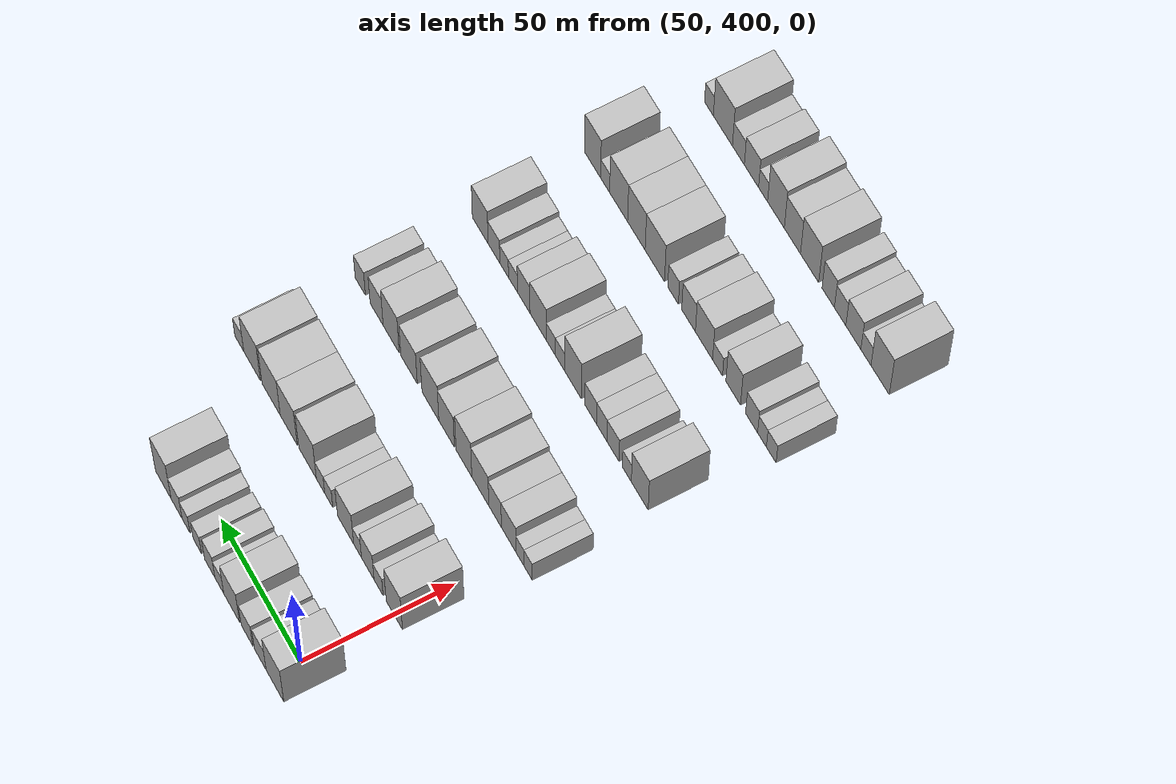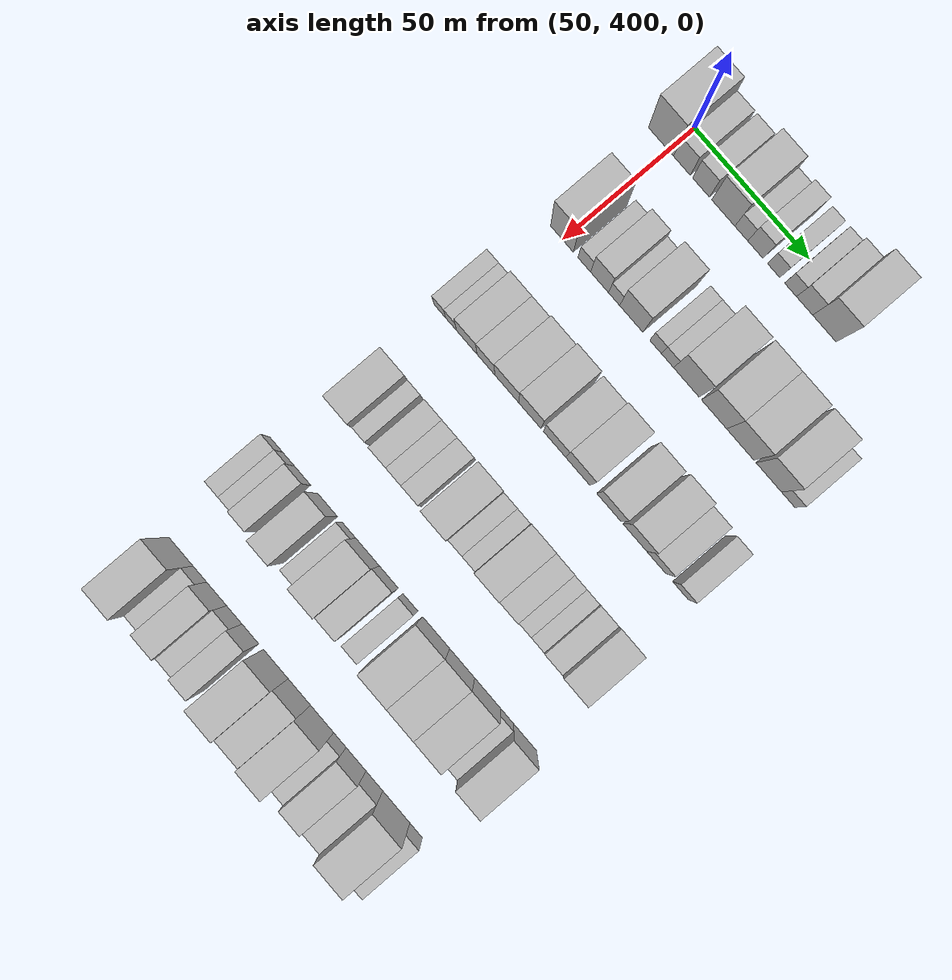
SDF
<sdf version="1.6">
 <world name="default">
  <model name="building_110">
   <static>1</static>
   <pose>50.0000 396.7869 0 0.000000 0.000000 0.000000</pose>
   <link name="link">
    <pose>0 0 12.00 0 0 0</pose>
    <collision name="collision"><geometry><box><size>20.0000 11.0108 24.0000</size></box></geometry></collision>
    <visual name="visual">
     <cast_shadows>0</cast_shadows>
     <geometry><box><size>20.0000 11.0108 24.0000</size></box></geometry>
     <material>
      <script>
       <uri>model://HANNAS_wall/materials/scripts</uri>
       <uri>model://HANNAS_wall/materials/textures</uri>
       <name>vrc/HANNAS_wall</name>
      </script>
     </material>
    </visual>
   </link>
  </model>
  <model name="building_111">
   <static>1</static>
   <pose>50.0000 405.9550 0 0.000000 0.000000 0.000000</pose>
   <link name="link">
    <pose>0 0 7.50 0 0 0</pose>
    <collision name="collision"><geometry><box><size>20.0000 7.3254 15.0000</size></box></geometry></collision>
    <visual name="visual">
     <cast_shadows>0</cast_shadows>
     <geometry><box><size>20.0000 7.3254 15.0000</size></box></geometry>
     <material>
      <script>
       <uri>model://HANNAS_wall/materials/scripts</uri>
       <uri>model://HANNAS_wall/materials/textures</uri>
       <name>vrc/HANNAS_wall</name>
      </script>
     </material>
    </visual>
   </link>
  </model>
  <model name="building_112">
   <static>1</static>
   <pose>50.0000 414.2902 0 0.000000 0.000000 0.000000</pose>
   <link name="link">
    <pose>0 0 7.50 0 0 0</pose>
    <collision name="collision"><geometry><box><size>20.0000 7.3451 15.0000</size></box></geometry></collision>
    <visual name="visual">
     <cast_shadows>0</cast_shadows>
     <geometry><box><size>20.0000 7.3451 15.0000</size></box></geometry>
     <material>
      <script>
       <uri>model://HANNAS_wall/materials/scripts</uri>
       <uri>model://HANNAS_wall/materials/textures</uri>
       <name>vrc/HANNAS_wall</name>
      </script>
     </material>
    </visual>
   </link>
  </model>
  <model name="building_113">
   <static>1</static>
   <pose>50.0000 423.9971 0 0.000000 0.000000 0.000000</pose>
   <link name="link">
    <pose>0 0 10.50 0 0 0</pose>
    <collision name="collision"><geometry><box><size>20.0000 10.0688 21.0000</size></box></geometry></collision>
    <visual name="visual">
     <cast_shadows>0</cast_shadows>
     <geometry><box><size>20.0000 10.0688 21.0000</size></box></geometry>
     <material>
      <script>
       <uri>model://HANNAS_wall/materials/scripts</uri>
       <uri>model://HANNAS_wall/materials/textures</uri>
       <name>vrc/HANNAS_wall</name>
      </script>
     </material>
    </visual>
   </link>
  </model>
  <model name="building_114">
   <static>1</static>
   <pose>50.0000 431.8633 0 0.000000 0.000000 0.000000</pose>
   <link name="link">
    <pose>0 0 6.00 0 0 0</pose>
    <collision name="collision"><geometry><box><size>20.0000 5.6636 12.0000</size></box></geometry></collision>
    <visual name="visual">
     <cast_shadows>0</cast_shadows>
     <geometry><box><size>20.0000 5.6636 12.0000</size></box></geometry>
     <material>
      <script>
       <uri>model://HANNAS_wall/materials/scripts</uri>
       <uri>model://HANNAS_wall/materials/textures</uri>
       <name>vrc/HANNAS_wall</name>
      </script>
     </material>
    </visual>
   </link>
  </model>
  <model name="building_115">
   <static>1</static>
   <pose>50.0000 437.9634 0 0.000000 0.000000 0.000000</pose>
   <link name="link">
    <pose>0 0 7.50 0 0 0</pose>
    <collision name="collision"><geometry><box><size>20.0000 6.5366 15.0000</size></box></geometry></collision>
    <visual name="visual">
     <cast_shadows>0</cast_shadows>
     <geometry><box><size>20.0000 6.5366 15.0000</size></box></geometry>
     <material>
      <script>
       <uri>model://HANNAS_wall/materials/scripts</uri>
       <uri>model://HANNAS_wall/materials/textures</uri>
       <name>vrc/HANNAS_wall</name>
      </script>
     </material>
    </visual>
   </link>
  </model>
  <model name="building_116">
   <static>1</static>
   <pose>50.0000 445.9279 0 0.000000 0.000000 0.000000</pose>
   <link name="link">
    <pose>0 0 6.00 0 0 0</pose>
    <collision name="collision"><geometry><box><size>20.0000 5.3922 12.0000</size></box></geometry></collision>
    <visual name="visual">
     <cast_shadows>0</cast_shadows>
     <geometry><box><size>20.0000 5.3922 12.0000</size></box></geometry>
     <material>
      <script>
       <uri>model://HANNAS_wall/materials/scripts</uri>
       <uri>model://HANNAS_wall/materials/textures</uri>
       <name>vrc/HANNAS_wall</name>
      </script>
     </material>
    </visual>
   </link>
  </model>
  <model name="building_117">
   <static>1</static>
   <pose>50.0000 453.1984 0 0.000000 0.000000 0.000000</pose>
   <link name="link">
    <pose>0 0 6.00 0 0 0</pose>
    <collision name="collision"><geometry><box><size>20.0000 5.1488 12.0000</size></box></geometry></collision>
    <visual name="visual">
     <cast_shadows>0</cast_shadows>
     <geometry><box><size>20.0000 5.1488 12.0000</size></box></geometry>
     <material>
      <script>
       <uri>model://HANNAS_wall/materials/scripts</uri>
       <uri>model://HANNAS_wall/materials/textures</uri>
       <name>vrc/HANNAS_wall</name>
      </script>
     </material>
    </visual>
   </link>
  </model>
  <model name="building_118">
   <static>1</static>
   <pose>50.0000 459.2826 0 0.000000 0.000000 0.000000</pose>
   <link name="link">
    <pose>0 0 7.50 0 0 0</pose>
    <collision name="collision"><geometry><box><size>20.0000 7.0195 15.0000</size></box></geometry></collision>
    <visual name="visual">
     <cast_shadows>0</cast_shadows>
     <geometry><box><size>20.0000 7.0195 15.0000</size></box></geometry>
     <material>
      <script>
       <uri>model://HANNAS_wall/materials/scripts</uri>
       <uri>model://HANNAS_wall/materials/textures</uri>
       <name>vrc/HANNAS_wall</name>
      </script>
     </material>
    </visual>
   </link>
  </model>
  <model name="building_119">
   <static>1</static>
   <pose>50.0000 467.8525 0 0.000000 0.000000 0.000000</pose>
   <link name="link">
    <pose>0 0 12.00 0 0 0</pose>
    <collision name="collision"><geometry><box><size>20.0000 10.1203 24.0000</size></box></geometry></collision>
    <visual name="visual">
     <cast_shadows>0</cast_shadows>
     <geometry><box><size>20.0000 10.1203 24.0000</size></box></geometry>
     <material>
      <script>
       <uri>model://HANNAS_wall/materials/scripts</uri>
       <uri>model://HANNAS_wall/materials/textures</uri>
       <name>vrc/HANNAS_wall</name>
      </script>
     </material>
    </visual>
   </link>
  </model>
  <model name="building_244">
   <static>1</static>
   <pose>90.0000 399.6573 0 0.000000 0.000000 0.000000</pose>
   <link name="link">
    <pose>0 0 12.00 0 0 0</pose>
    <collision name="collision"><geometry><box><size>20.0000 9.9907 24.0000</size></box></geometry></collision>
    <visual name="visual">
     <cast_shadows>0</cast_shadows>
     <geometry><box><size>20.0000 9.9907 24.0000</size></box></geometry>
     <material>
      <script>
       <uri>model://HANNAS_wall/materials/scripts</uri>
       <uri>model://HANNAS_wall/materials/textures</uri>
       <name>vrc/HANNAS_wall</name>
      </script>
     </material>
    </visual>
   </link>
  </model>
  <model name="building_245">
   <static>1</static>
   <pose>90.0000 409.4291 0 0.000000 0.000000 0.000000</pose>
   <link name="link">
    <pose>0 0 6.00 0 0 0</pose>
    <collision name="collision"><geometry><box><size>20.0000 5.5528 12.0000</size></box></geometry></collision>
    <visual name="visual">
     <cast_shadows>0</cast_shadows>
     <geometry><box><size>20.0000 5.5528 12.0000</size></box></geometry>
     <material>
      <script>
       <uri>model://HANNAS_wall/materials/scripts</uri>
       <uri>model://HANNAS_wall/materials/textures</uri>
       <name>vrc/HANNAS_wall</name>
      </script>
     </material>
    </visual>
   </link>
  </model>
  <model name="building_246">
   <static>1</static>
   <pose>90.0000 416.1023 0 0.000000 0.000000 0.000000</pose>
   <link name="link">
    <pose>0 0 9.00 0 0 0</pose>
    <collision name="collision"><geometry><box><size>20.0000 7.7935 18.0000</size></box></geometry></collision>
    <visual name="visual">
     <cast_shadows>0</cast_shadows>
     <geometry><box><size>20.0000 7.7935 18.0000</size></box></geometry>
     <material>
      <script>
       <uri>model://HANNAS_wall/materials/scripts</uri>
       <uri>model://HANNAS_wall/materials/textures</uri>
       <name>vrc/HANNAS_wall</name>
      </script>
     </material>
    </visual>
   </link>
  </model>
  <model name="building_247">
   <static>1</static>
   <pose>90.0000 422.4550 0 0.000000 0.000000 0.000000</pose>
   <link name="link">
    <pose>0 0 6.00 0 0 0</pose>
    <collision name="collision"><geometry><box><size>20.0000 4.9119 12.0000</size></box></geometry></collision>
    <visual name="visual">
     <cast_shadows>0</cast_shadows>
     <geometry><box><size>20.0000 4.9119 12.0000</size></box></geometry>
     <material>
      <script>
       <uri>model://HANNAS_wall/materials/scripts</uri>
       <uri>model://HANNAS_wall/materials/textures</uri>
       <name>vrc/HANNAS_wall</name>
      </script>
     </material>
    </visual>
   </link>
  </model>
  <model name="building_248">
   <static>1</static>
   <pose>90.0000 429.9454 0 0.000000 0.000000 0.000000</pose>
   <link name="link">
    <pose>0 0 10.50 0 0 0</pose>
    <collision name="collision"><geometry><box><size>20.0000 10.0687 21.0000</size></box></geometry></collision>
    <visual name="visual">
     <cast_shadows>0</cast_shadows>
     <geometry><box><size>20.0000 10.0687 21.0000</size></box></geometry>
     <material>
      <script>
       <uri>model://HANNAS_wall/materials/scripts</uri>
       <uri>model://HANNAS_wall/materials/textures</uri>
       <name>vrc/HANNAS_wall</name>
      </script>
     </material>
    </visual>
   </link>
  </model>
  <model name="building_249">
   <static>1</static>
   <pose>90.0000 440.5292 0 0.000000 0.000000 0.000000</pose>
   <link name="link">
    <pose>0 0 6.00 0 0 0</pose>
    <collision name="collision"><geometry><box><size>20.0000 5.0989 12.0000</size></box></geometry></collision>
    <visual name="visual">
     <cast_shadows>0</cast_shadows>
     <geometry><box><size>20.0000 5.0989 12.0000</size></box></geometry>
     <material>
      <script>
       <uri>model://HANNAS_wall/materials/scripts</uri>
       <uri>model://HANNAS_wall/materials/textures</uri>
       <name>vrc/HANNAS_wall</name>
      </script>
     </material>
    </visual>
   </link>
  </model>
  <model name="building_250">
   <static>1</static>
   <pose>90.0000 445.7285 0 0.000000 0.000000 0.000000</pose>
   <link name="link">
    <pose>0 0 6.00 0 0 0</pose>
    <collision name="collision"><geometry><box><size>20.0000 5.2997 12.0000</size></box></geometry></collision>
    <visual name="visual">
     <cast_shadows>0</cast_shadows>
     <geometry><box><size>20.0000 5.2997 12.0000</size></box></geometry>
     <material>
      <script>
       <uri>model://HANNAS_wall/materials/scripts</uri>
       <uri>model://HANNAS_wall/materials/textures</uri>
       <name>vrc/HANNAS_wall</name>
      </script>
     </material>
    </visual>
   </link>
  </model>
  <model name="building_251">
   <static>1</static>
   <pose>90.0000 453.9120 0 0.000000 0.000000 0.000000</pose>
   <link name="link">
    <pose>0 0 12.00 0 0 0</pose>
    <collision name="collision"><geometry><box><size>20.0000 11.0674 24.0000</size></box></geometry></collision>
    <visual name="visual">
     <cast_shadows>0</cast_shadows>
     <geometry><box><size>20.0000 11.0674 24.0000</size></box></geometry>
     <material>
      <script>
       <uri>model://HANNAS_wall/materials/scripts</uri>
       <uri>model://HANNAS_wall/materials/textures</uri>
       <name>vrc/HANNAS_wall</name>
      </script>
     </material>
    </visual>
   </link>
  </model>
  <model name="building_252">
   <static>1</static>
   <pose>90.0000 465.8849 0 0.000000 0.000000 0.000000</pose>
   <link name="link">
    <pose>0 0 12.00 0 0 0</pose>
    <collision name="collision"><geometry><box><size>20.0000 10.8783 24.0000</size></box></geometry></collision>
    <visual name="visual">
     <cast_shadows>0</cast_shadows>
     <geometry><box><size>20.0000 10.8783 24.0000</size></box></geometry>
     <material>
      <script>
       <uri>model://HANNAS_wall/materials/scripts</uri>
       <uri>model://HANNAS_wall/materials/textures</uri>
       <name>vrc/HANNAS_wall</name>
      </script>
     </material>
    </visual>
   </link>
  </model>
  <model name="building_253">
   <static>1</static>
   <pose>90.0000 477.1930 0 0.000000 0.000000 0.000000</pose>
   <link name="link">
    <pose>0 0 12.00 0 0 0</pose>
    <collision name="collision"><geometry><box><size>20.0000 11.7379 24.0000</size></box></geometry></collision>
    <visual name="visual">
     <cast_shadows>0</cast_shadows>
     <geometry><box><size>20.0000 11.7379 24.0000</size></box></geometry>
     <material>
      <script>
       <uri>model://HANNAS_wall/materials/scripts</uri>
       <uri>model://HANNAS_wall/materials/textures</uri>
       <name>vrc/HANNAS_wall</name>
      </script>
     </material>
    </visual>
   </link>
  </model>
  <model name="building_254">
   <static>1</static>
   <pose>90.0000 489.4844 0 0.000000 0.000000 0.000000</pose>
   <link name="link">
    <pose>0 0 12.00 0 0 0</pose>
    <collision name="collision"><geometry><box><size>20.0000 10.8449 24.0000</size></box></geometry></collision>
    <visual name="visual">
     <cast_shadows>0</cast_shadows>
     <geometry><box><size>20.0000 10.8449 24.0000</size></box></geometry>
     <material>
      <script>
       <uri>model://HANNAS_wall/materials/scripts</uri>
       <uri>model://HANNAS_wall/materials/textures</uri>
       <name>vrc/HANNAS_wall</name>
      </script>
     </material>
    </visual>
   </link>
  </model>
  <model name="building_255">
   <static>1</static>
   <pose>90.0000 497.8028 0 0.000000 0.000000 0.000000</pose>
   <link name="link">
    <pose>0 0 6.00 0 0 0</pose>
    <collision name="collision"><geometry><box><size>20.0000 5.7920 12.0000</size></box></geometry></collision>
    <visual name="visual">
     <cast_shadows>0</cast_shadows>
     <geometry><box><size>20.0000 5.7920 12.0000</size></box></geometry>
     <material>
      <script>
       <uri>model://HANNAS_wall/materials/scripts</uri>
       <uri>model://HANNAS_wall/materials/textures</uri>
       <name>vrc/HANNAS_wall</name>
      </script>
     </material>
    </visual>
   </link>
  </model>
  <model name="building_375">
   <static>1</static>
   <pose>130.0000 392.8056 0 0.000000 0.000000 0.000000</pose>
   <link name="link">
    <pose>0 0 6.00 0 0 0</pose>
    <collision name="collision"><geometry><box><size>20.0000 5.0353 12.0000</size></box></geometry></collision>
    <visual name="visual">
     <cast_shadows>0</cast_shadows>
     <geometry><box><size>20.0000 5.0353 12.0000</size></box></geometry>
     <material>
      <script>
       <uri>model://HANNAS_wall/materials/scripts</uri>
       <uri>model://HANNAS_wall/materials/textures</uri>
       <name>vrc/HANNAS_wall</name>
      </script>
     </material>
    </visual>
   </link>
  </model>
  <model name="building_376">
   <static>1</static>
   <pose>130.0000 397.7266 0 0.000000 0.000000 0.000000</pose>
   <link name="link">
    <pose>0 0 6.00 0 0 0</pose>
    <collision name="collision"><geometry><box><size>20.0000 4.8066 12.0000</size></box></geometry></collision>
    <visual name="visual">
     <cast_shadows>0</cast_shadows>
     <geometry><box><size>20.0000 4.8066 12.0000</size></box></geometry>
     <material>
      <script>
       <uri>model://HANNAS_wall/materials/scripts</uri>
       <uri>model://HANNAS_wall/materials/textures</uri>
       <name>vrc/HANNAS_wall</name>
      </script>
     </material>
    </visual>
   </link>
  </model>
  <model name="building_377">
   <static>1</static>
   <pose>130.0000 404.5929 0 0.000000 0.000000 0.000000</pose>
   <link name="link">
    <pose>0 0 9.00 0 0 0</pose>
    <collision name="collision"><geometry><box><size>20.0000 8.9261 18.0000</size></box></geometry></collision>
    <visual name="visual">
     <cast_shadows>0</cast_shadows>
     <geometry><box><size>20.0000 8.9261 18.0000</size></box></geometry>
     <material>
      <script>
       <uri>model://HANNAS_wall/materials/scripts</uri>
       <uri>model://HANNAS_wall/materials/textures</uri>
       <name>vrc/HANNAS_wall</name>
      </script>
     </material>
    </visual>
   </link>
  </model>
  <model name="building_378">
   <static>1</static>
   <pose>130.0000 412.9131 0 0.000000 0.000000 0.000000</pose>
   <link name="link">
    <pose>0 0 9.00 0 0 0</pose>
    <collision name="collision"><geometry><box><size>20.0000 7.7143 18.0000</size></box></geometry></collision>
    <visual name="visual">
     <cast_shadows>0</cast_shadows>
     <geometry><box><size>20.0000 7.7143 18.0000</size></box></geometry>
     <material>
      <script>
       <uri>model://HANNAS_wall/materials/scripts</uri>
       <uri>model://HANNAS_wall/materials/textures</uri>
       <name>vrc/HANNAS_wall</name>
      </script>
     </material>
    </visual>
   </link>
  </model>
  <model name="building_379">
   <static>1</static>
   <pose>130.0000 421.9972 0 0.000000 0.000000 0.000000</pose>
   <link name="link">
    <pose>0 0 10.50 0 0 0</pose>
    <collision name="collision"><geometry><box><size>20.0000 10.4540 21.0000</size></box></geometry></collision>
    <visual name="visual">
     <cast_shadows>0</cast_shadows>
     <geometry><box><size>20.0000 10.4540 21.0000</size></box></geometry>
     <material>
      <script>
       <uri>model://HANNAS_wall/materials/scripts</uri>
       <uri>model://HANNAS_wall/materials/textures</uri>
       <name>vrc/HANNAS_wall</name>
      </script>
     </material>
    </visual>
   </link>
  </model>
  <model name="building_380">
   <static>1</static>
   <pose>130.0000 432.1207 0 0.000000 0.000000 0.000000</pose>
   <link name="link">
    <pose>0 0 12.00 0 0 0</pose>
    <collision name="collision"><geometry><box><size>20.0000 9.7931 24.0000</size></box></geometry></collision>
    <visual name="visual">
     <cast_shadows>0</cast_shadows>
     <geometry><box><size>20.0000 9.7931 24.0000</size></box></geometry>
     <material>
      <script>
       <uri>model://HANNAS_wall/materials/scripts</uri>
       <uri>model://HANNAS_wall/materials/textures</uri>
       <name>vrc/HANNAS_wall</name>
      </script>
     </material>
    </visual>
   </link>
  </model>
  <model name="building_381">
   <static>1</static>
   <pose>130.0000 442.8508 0 0.000000 0.000000 0.000000</pose>
   <link name="link">
    <pose>0 0 10.50 0 0 0</pose>
    <collision name="collision"><geometry><box><size>20.0000 9.6670 21.0000</size></box></geometry></collision>
    <visual name="visual">
     <cast_shadows>0</cast_shadows>
     <geometry><box><size>20.0000 9.6670 21.0000</size></box></geometry>
     <material>
      <script>
       <uri>model://HANNAS_wall/materials/scripts</uri>
       <uri>model://HANNAS_wall/materials/textures</uri>
       <name>vrc/HANNAS_wall</name>
      </script>
     </material>
    </visual>
   </link>
  </model>
  <model name="building_382">
   <static>1</static>
   <pose>130.0000 452.9382 0 0.000000 0.000000 0.000000</pose>
   <link name="link">
    <pose>0 0 12.00 0 0 0</pose>
    <collision name="collision"><geometry><box><size>20.0000 10.5079 24.0000</size></box></geometry></collision>
    <visual name="visual">
     <cast_shadows>0</cast_shadows>
     <geometry><box><size>20.0000 10.5079 24.0000</size></box></geometry>
     <material>
      <script>
       <uri>model://HANNAS_wall/materials/scripts</uri>
       <uri>model://HANNAS_wall/materials/textures</uri>
       <name>vrc/HANNAS_wall</name>
      </script>
     </material>
    </visual>
   </link>
  </model>
  <model name="building_383">
   <static>1</static>
   <pose>130.0000 466.3712 0 0.000000 0.000000 0.000000</pose>
   <link name="link">
    <pose>0 0 10.50 0 0 0</pose>
    <collision name="collision"><geometry><box><size>20.0000 10.3580 21.0000</size></box></geometry></collision>
    <visual name="visual">
     <cast_shadows>0</cast_shadows>
     <geometry><box><size>20.0000 10.3580 21.0000</size></box></geometry>
     <material>
      <script>
       <uri>model://HANNAS_wall/materials/scripts</uri>
       <uri>model://HANNAS_wall/materials/textures</uri>
       <name>vrc/HANNAS_wall</name>
      </script>
     </material>
    </visual>
   </link>
  </model>
  <model name="building_384">
   <static>1</static>
   <pose>130.0000 477.6420 0 0.000000 0.000000 0.000000</pose>
   <link name="link">
    <pose>0 0 12.00 0 0 0</pose>
    <collision name="collision"><geometry><box><size>20.0000 10.1837 24.0000</size></box></geometry></collision>
    <visual name="visual">
     <cast_shadows>0</cast_shadows>
     <geometry><box><size>20.0000 10.1837 24.0000</size></box></geometry>
     <material>
      <script>
       <uri>model://HANNAS_wall/materials/scripts</uri>
       <uri>model://HANNAS_wall/materials/textures</uri>
       <name>vrc/HANNAS_wall</name>
      </script>
     </material>
    </visual>
   </link>
  </model>
  <model name="building_385">
   <static>1</static>
   <pose>130.0000 486.8721 0 0.000000 0.000000 0.000000</pose>
   <link name="link">
    <pose>0 0 9.00 0 0 0</pose>
    <collision name="collision"><geometry><box><size>20.0000 8.2764 18.0000</size></box></geometry></collision>
    <visual name="visual">
     <cast_shadows>0</cast_shadows>
     <geometry><box><size>20.0000 8.2764 18.0000</size></box></geometry>
     <material>
      <script>
       <uri>model://HANNAS_wall/materials/scripts</uri>
       <uri>model://HANNAS_wall/materials/textures</uri>
       <name>vrc/HANNAS_wall</name>
      </script>
     </material>
    </visual>
   </link>
  </model>
  <model name="building_386">
   <static>1</static>
   <pose>130.0000 497.3016 0 0.000000 0.000000 0.000000</pose>
   <link name="link">
    <pose>0 0 7.50 0 0 0</pose>
    <collision name="collision"><geometry><box><size>20.0000 6.5827 15.0000</size></box></geometry></collision>
    <visual name="visual">
     <cast_shadows>0</cast_shadows>
     <geometry><box><size>20.0000 6.5827 15.0000</size></box></geometry>
     <material>
      <script>
       <uri>model://HANNAS_wall/materials/scripts</uri>
       <uri>model://HANNAS_wall/materials/textures</uri>
       <name>vrc/HANNAS_wall</name>
      </script>
     </material>
    </visual>
   </link>
  </model>
  <model name="building_513">
   <static>1</static>
   <pose>170.0000 398.5979 0 0.000000 0.000000 0.000000</pose>
   <link name="link">
    <pose>0 0 10.50 0 0 0</pose>
    <collision name="collision"><geometry><box><size>20.0000 10.0521 21.0000</size></box></geometry></collision>
    <visual name="visual">
     <cast_shadows>0</cast_shadows>
     <geometry><box><size>20.0000 10.0521 21.0000</size></box></geometry>
     <material>
      <script>
       <uri>model://HANNAS_wall/materials/scripts</uri>
       <uri>model://HANNAS_wall/materials/textures</uri>
       <name>vrc/HANNAS_wall</name>
      </script>
     </material>
    </visual>
   </link>
  </model>
  <model name="building_514">
   <static>1</static>
   <pose>170.0000 406.3319 0 0.000000 0.000000 0.000000</pose>
   <link name="link">
    <pose>0 0 6.00 0 0 0</pose>
    <collision name="collision"><geometry><box><size>20.0000 5.4159 12.0000</size></box></geometry></collision>
    <visual name="visual">
     <cast_shadows>0</cast_shadows>
     <geometry><box><size>20.0000 5.4159 12.0000</size></box></geometry>
     <material>
      <script>
       <uri>model://HANNAS_wall/materials/scripts</uri>
       <uri>model://HANNAS_wall/materials/textures</uri>
       <name>vrc/HANNAS_wall</name>
      </script>
     </material>
    </visual>
   </link>
  </model>
  <model name="building_515">
   <static>1</static>
   <pose>170.0000 414.7129 0 0.000000 0.000000 0.000000</pose>
   <link name="link">
    <pose>0 0 7.50 0 0 0</pose>
    <collision name="collision"><geometry><box><size>20.0000 7.3463 15.0000</size></box></geometry></collision>
    <visual name="visual">
     <cast_shadows>0</cast_shadows>
     <geometry><box><size>20.0000 7.3463 15.0000</size></box></geometry>
     <material>
      <script>
       <uri>model://HANNAS_wall/materials/scripts</uri>
       <uri>model://HANNAS_wall/materials/textures</uri>
       <name>vrc/HANNAS_wall</name>
      </script>
     </material>
    </visual>
   </link>
  </model>
  <model name="building_516">
   <static>1</static>
   <pose>170.0000 421.5508 0 0.000000 0.000000 0.000000</pose>
   <link name="link">
    <pose>0 0 7.50 0 0 0</pose>
    <collision name="collision"><geometry><box><size>20.0000 6.3295 15.0000</size></box></geometry></collision>
    <visual name="visual">
     <cast_shadows>0</cast_shadows>
     <geometry><box><size>20.0000 6.3295 15.0000</size></box></geometry>
     <material>
      <script>
       <uri>model://HANNAS_wall/materials/scripts</uri>
       <uri>model://HANNAS_wall/materials/textures</uri>
       <name>vrc/HANNAS_wall</name>
      </script>
     </material>
    </visual>
   </link>
  </model>
  <model name="building_517">
   <static>1</static>
   <pose>170.0000 428.2773 0 0.000000 0.000000 0.000000</pose>
   <link name="link">
    <pose>0 0 7.50 0 0 0</pose>
    <collision name="collision"><geometry><box><size>20.0000 7.1235 15.0000</size></box></geometry></collision>
    <visual name="visual">
     <cast_shadows>0</cast_shadows>
     <geometry><box><size>20.0000 7.1235 15.0000</size></box></geometry>
     <material>
      <script>
       <uri>model://HANNAS_wall/materials/scripts</uri>
       <uri>model://HANNAS_wall/materials/textures</uri>
       <name>vrc/HANNAS_wall</name>
      </script>
     </material>
    </visual>
   </link>
  </model>
  <model name="building_518">
   <static>1</static>
   <pose>170.0000 438.9742 0 0.000000 0.000000 0.000000</pose>
   <link name="link">
    <pose>0 0 12.00 0 0 0</pose>
    <collision name="collision"><geometry><box><size>20.0000 10.2703 24.0000</size></box></geometry></collision>
    <visual name="visual">
     <cast_shadows>0</cast_shadows>
     <geometry><box><size>20.0000 10.2703 24.0000</size></box></geometry>
     <material>
      <script>
       <uri>model://HANNAS_wall/materials/scripts</uri>
       <uri>model://HANNAS_wall/materials/textures</uri>
       <name>vrc/HANNAS_wall</name>
      </script>
     </material>
    </visual>
   </link>
  </model>
  <model name="building_519">
   <static>1</static>
   <pose>170.0000 447.0011 0 0.000000 0.000000 0.000000</pose>
   <link name="link">
    <pose>0 0 6.00 0 0 0</pose>
    <collision name="collision"><geometry><box><size>20.0000 5.7835 12.0000</size></box></geometry></collision>
    <visual name="visual">
     <cast_shadows>0</cast_shadows>
     <geometry><box><size>20.0000 5.7835 12.0000</size></box></geometry>
     <material>
      <script>
       <uri>model://HANNAS_wall/materials/scripts</uri>
       <uri>model://HANNAS_wall/materials/textures</uri>
       <name>vrc/HANNAS_wall</name>
      </script>
     </material>
    </visual>
   </link>
  </model>
  <model name="building_520">
   <static>1</static>
   <pose>170.0000 452.6421 0 0.000000 0.000000 0.000000</pose>
   <link name="link">
    <pose>0 0 6.00 0 0 0</pose>
    <collision name="collision"><geometry><box><size>20.0000 5.4986 12.0000</size></box></geometry></collision>
    <visual name="visual">
     <cast_shadows>0</cast_shadows>
     <geometry><box><size>20.0000 5.4986 12.0000</size></box></geometry>
     <material>
      <script>
       <uri>model://HANNAS_wall/materials/scripts</uri>
       <uri>model://HANNAS_wall/materials/textures</uri>
       <name>vrc/HANNAS_wall</name>
      </script>
     </material>
    </visual>
   </link>
  </model>
  <model name="building_521">
   <static>1</static>
   <pose>170.0000 460.4537 0 0.000000 0.000000 0.000000</pose>
   <link name="link">
    <pose>0 0 10.50 0 0 0</pose>
    <collision name="collision"><geometry><box><size>20.0000 10.1245 21.0000</size></box></geometry></collision>
    <visual name="visual">
     <cast_shadows>0</cast_shadows>
     <geometry><box><size>20.0000 10.1245 21.0000</size></box></geometry>
     <material>
      <script>
       <uri>model://HANNAS_wall/materials/scripts</uri>
       <uri>model://HANNAS_wall/materials/textures</uri>
       <name>vrc/HANNAS_wall</name>
      </script>
     </material>
    </visual>
   </link>
  </model>
  <model name="building_522">
   <static>1</static>
   <pose>170.0000 469.4047 0 0.000000 0.000000 0.000000</pose>
   <link name="link">
    <pose>0 0 9.00 0 0 0</pose>
    <collision name="collision"><geometry><box><size>20.0000 7.7776 18.0000</size></box></geometry></collision>
    <visual name="visual">
     <cast_shadows>0</cast_shadows>
     <geometry><box><size>20.0000 7.7776 18.0000</size></box></geometry>
     <material>
      <script>
       <uri>model://HANNAS_wall/materials/scripts</uri>
       <uri>model://HANNAS_wall/materials/textures</uri>
       <name>vrc/HANNAS_wall</name>
      </script>
     </material>
    </visual>
   </link>
  </model>
  <model name="building_523">
   <static>1</static>
   <pose>170.0000 476.0780 0 0.000000 0.000000 0.000000</pose>
   <link name="link">
    <pose>0 0 6.00 0 0 0</pose>
    <collision name="collision"><geometry><box><size>20.0000 5.5689 12.0000</size></box></geometry></collision>
    <visual name="visual">
     <cast_shadows>0</cast_shadows>
     <geometry><box><size>20.0000 5.5689 12.0000</size></box></geometry>
     <material>
      <script>
       <uri>model://HANNAS_wall/materials/scripts</uri>
       <uri>model://HANNAS_wall/materials/textures</uri>
       <name>vrc/HANNAS_wall</name>
      </script>
     </material>
    </visual>
   </link>
  </model>
  <model name="building_524">
   <static>1</static>
   <pose>170.0000 481.5772 0 0.000000 0.000000 0.000000</pose>
   <link name="link">
    <pose>0 0 6.00 0 0 0</pose>
    <collision name="collision"><geometry><box><size>20.0000 5.4295 12.0000</size></box></geometry></collision>
    <visual name="visual">
     <cast_shadows>0</cast_shadows>
     <geometry><box><size>20.0000 5.4295 12.0000</size></box></geometry>
     <material>
      <script>
       <uri>model://HANNAS_wall/materials/scripts</uri>
       <uri>model://HANNAS_wall/materials/textures</uri>
       <name>vrc/HANNAS_wall</name>
      </script>
     </material>
    </visual>
   </link>
  </model>
  <model name="building_525">
   <static>1</static>
   <pose>170.0000 487.9880 0 0.000000 0.000000 0.000000</pose>
   <link name="link">
    <pose>0 0 7.50 0 0 0</pose>
    <collision name="collision"><geometry><box><size>20.0000 7.3920 15.0000</size></box></geometry></collision>
    <visual name="visual">
     <cast_shadows>0</cast_shadows>
     <geometry><box><size>20.0000 7.3920 15.0000</size></box></geometry>
     <material>
      <script>
       <uri>model://HANNAS_wall/materials/scripts</uri>
       <uri>model://HANNAS_wall/materials/textures</uri>
       <name>vrc/HANNAS_wall</name>
      </script>
     </material>
    </visual>
   </link>
  </model>
  <model name="building_526">
   <static>1</static>
   <pose>170.0000 496.6320 0 0.000000 0.000000 0.000000</pose>
   <link name="link">
    <pose>0 0 10.50 0 0 0</pose>
    <collision name="collision"><geometry><box><size>20.0000 9.8961 21.0000</size></box></geometry></collision>
    <visual name="visual">
     <cast_shadows>0</cast_shadows>
     <geometry><box><size>20.0000 9.8961 21.0000</size></box></geometry>
     <material>
      <script>
       <uri>model://HANNAS_wall/materials/scripts</uri>
       <uri>model://HANNAS_wall/materials/textures</uri>
       <name>vrc/HANNAS_wall</name>
      </script>
     </material>
    </visual>
   </link>
  </model>
  <model name="building_653">
   <static>1</static>
   <pose>210.0000 391.5893 0 0.000000 0.000000 0.000000</pose>
   <link name="link">
    <pose>0 0 6.00 0 0 0</pose>
    <collision name="collision"><geometry><box><size>20.0000 5.6803 12.0000</size></box></geometry></collision>
    <visual name="visual">
     <cast_shadows>0</cast_shadows>
     <geometry><box><size>20.0000 5.6803 12.0000</size></box></geometry>
     <material>
      <script>
       <uri>model://HANNAS_wall/materials/scripts</uri>
       <uri>model://HANNAS_wall/materials/textures</uri>
       <name>vrc/HANNAS_wall</name>
      </script>
     </material>
    </visual>
   </link>
  </model>
  <model name="building_654">
   <static>1</static>
   <pose>210.0000 397.0269 0 0.000000 0.000000 0.000000</pose>
   <link name="link">
    <pose>0 0 6.00 0 0 0</pose>
    <collision name="collision"><geometry><box><size>20.0000 5.1949 12.0000</size></box></geometry></collision>
    <visual name="visual">
     <cast_shadows>0</cast_shadows>
     <geometry><box><size>20.0000 5.1949 12.0000</size></box></geometry>
     <material>
      <script>
       <uri>model://HANNAS_wall/materials/scripts</uri>
       <uri>model://HANNAS_wall/materials/textures</uri>
       <name>vrc/HANNAS_wall</name>
      </script>
     </material>
    </visual>
   </link>
  </model>
  <model name="building_655">
   <static>1</static>
   <pose>210.0000 403.2018 0 0.000000 0.000000 0.000000</pose>
   <link name="link">
    <pose>0 0 7.50 0 0 0</pose>
    <collision name="collision"><geometry><box><size>20.0000 7.1549 15.0000</size></box></geometry></collision>
    <visual name="visual">
     <cast_shadows>0</cast_shadows>
     <geometry><box><size>20.0000 7.1549 15.0000</size></box></geometry>
     <material>
      <script>
       <uri>model://HANNAS_wall/materials/scripts</uri>
       <uri>model://HANNAS_wall/materials/textures</uri>
       <name>vrc/HANNAS_wall</name>
      </script>
     </material>
    </visual>
   </link>
  </model>
  <model name="building_656">
   <static>1</static>
   <pose>210.0000 414.1515 0 0.000000 0.000000 0.000000</pose>
   <link name="link">
    <pose>0 0 10.50 0 0 0</pose>
    <collision name="collision"><geometry><box><size>20.0000 8.7445 21.0000</size></box></geometry></collision>
    <visual name="visual">
     <cast_shadows>0</cast_shadows>
     <geometry><box><size>20.0000 8.7445 21.0000</size></box></geometry>
     <material>
      <script>
       <uri>model://HANNAS_wall/materials/scripts</uri>
       <uri>model://HANNAS_wall/materials/textures</uri>
       <name>vrc/HANNAS_wall</name>
      </script>
     </material>
    </visual>
   </link>
  </model>
  <model name="building_657">
   <static>1</static>
   <pose>210.0000 423.4918 0 0.000000 0.000000 0.000000</pose>
   <link name="link">
    <pose>0 0 6.00 0 0 0</pose>
    <collision name="collision"><geometry><box><size>20.0000 5.9360 12.0000</size></box></geometry></collision>
    <visual name="visual">
     <cast_shadows>0</cast_shadows>
     <geometry><box><size>20.0000 5.9360 12.0000</size></box></geometry>
     <material>
      <script>
       <uri>model://HANNAS_wall/materials/scripts</uri>
       <uri>model://HANNAS_wall/materials/textures</uri>
       <name>vrc/HANNAS_wall</name>
      </script>
     </material>
    </visual>
   </link>
  </model>
  <model name="building_658">
   <static>1</static>
   <pose>210.0000 431.6336 0 0.000000 0.000000 0.000000</pose>
   <link name="link">
    <pose>0 0 10.50 0 0 0</pose>
    <collision name="collision"><geometry><box><size>20.0000 10.3476 21.0000</size></box></geometry></collision>
    <visual name="visual">
     <cast_shadows>0</cast_shadows>
     <geometry><box><size>20.0000 10.3476 21.0000</size></box></geometry>
     <material>
      <script>
       <uri>model://HANNAS_wall/materials/scripts</uri>
       <uri>model://HANNAS_wall/materials/textures</uri>
       <name>vrc/HANNAS_wall</name>
      </script>
     </material>
    </visual>
   </link>
  </model>
  <model name="building_659">
   <static>1</static>
   <pose>210.0000 440.9508 0 0.000000 0.000000 0.000000</pose>
   <link name="link">
    <pose>0 0 9.00 0 0 0</pose>
    <collision name="collision"><geometry><box><size>20.0000 8.2869 18.0000</size></box></geometry></collision>
    <visual name="visual">
     <cast_shadows>0</cast_shadows>
     <geometry><box><size>20.0000 8.2869 18.0000</size></box></geometry>
     <material>
      <script>
       <uri>model://HANNAS_wall/materials/scripts</uri>
       <uri>model://HANNAS_wall/materials/textures</uri>
       <name>vrc/HANNAS_wall</name>
      </script>
     </material>
    </visual>
   </link>
  </model>
  <model name="building_660">
   <static>1</static>
   <pose>210.0000 450.3261 0 0.000000 0.000000 0.000000</pose>
   <link name="link">
    <pose>0 0 7.50 0 0 0</pose>
    <collision name="collision"><geometry><box><size>20.0000 6.4636 15.0000</size></box></geometry></collision>
    <visual name="visual">
     <cast_shadows>0</cast_shadows>
     <geometry><box><size>20.0000 6.4636 15.0000</size></box></geometry>
     <material>
      <script>
       <uri>model://HANNAS_wall/materials/scripts</uri>
       <uri>model://HANNAS_wall/materials/textures</uri>
       <name>vrc/HANNAS_wall</name>
      </script>
     </material>
    </visual>
   </link>
  </model>
  <model name="building_661">
   <static>1</static>
   <pose>210.0000 461.4655 0 0.000000 0.000000 0.000000</pose>
   <link name="link">
    <pose>0 0 12.00 0 0 0</pose>
    <collision name="collision"><geometry><box><size>20.0000 11.8152 24.0000</size></box></geometry></collision>
    <visual name="visual">
     <cast_shadows>0</cast_shadows>
     <geometry><box><size>20.0000 11.8152 24.0000</size></box></geometry>
     <material>
      <script>
       <uri>model://HANNAS_wall/materials/scripts</uri>
       <uri>model://HANNAS_wall/materials/textures</uri>
       <name>vrc/HANNAS_wall</name>
      </script>
     </material>
    </visual>
   </link>
  </model>
  <model name="building_662">
   <static>1</static>
   <pose>210.0000 472.7736 0 0.000000 0.000000 0.000000</pose>
   <link name="link">
    <pose>0 0 12.00 0 0 0</pose>
    <collision name="collision"><geometry><box><size>20.0000 10.8010 24.0000</size></box></geometry></collision>
    <visual name="visual">
     <cast_shadows>0</cast_shadows>
     <geometry><box><size>20.0000 10.8010 24.0000</size></box></geometry>
     <material>
      <script>
       <uri>model://HANNAS_wall/materials/scripts</uri>
       <uri>model://HANNAS_wall/materials/textures</uri>
       <name>vrc/HANNAS_wall</name>
      </script>
     </material>
    </visual>
   </link>
  </model>
  <model name="building_663">
   <static>1</static>
   <pose>210.0000 483.7219 0 0.000000 0.000000 0.000000</pose>
   <link name="link">
    <pose>0 0 12.00 0 0 0</pose>
    <collision name="collision"><geometry><box><size>20.0000 11.0956 24.0000</size></box></geometry></collision>
    <visual name="visual">
     <cast_shadows>0</cast_shadows>
     <geometry><box><size>20.0000 11.0956 24.0000</size></box></geometry>
     <material>
      <script>
       <uri>model://HANNAS_wall/materials/scripts</uri>
       <uri>model://HANNAS_wall/materials/textures</uri>
       <name>vrc/HANNAS_wall</name>
      </script>
     </material>
    </visual>
   </link>
  </model>
  <model name="building_664">
   <static>1</static>
   <pose>210.0000 492.0799 0 0.000000 0.000000 0.000000</pose>
   <link name="link">
    <pose>0 0 6.00 0 0 0</pose>
    <collision name="collision"><geometry><box><size>20.0000 5.6205 12.0000</size></box></geometry></collision>
    <visual name="visual">
     <cast_shadows>0</cast_shadows>
     <geometry><box><size>20.0000 5.6205 12.0000</size></box></geometry>
     <material>
      <script>
       <uri>model://HANNAS_wall/materials/scripts</uri>
       <uri>model://HANNAS_wall/materials/textures</uri>
       <name>vrc/HANNAS_wall</name>
      </script>
     </material>
    </visual>
   </link>
  </model>
  <model name="building_665">
   <static>1</static>
   <pose>210.0000 499.8635 0 0.000000 0.000000 0.000000</pose>
   <link name="link">
    <pose>0 0 12.00 0 0 0</pose>
    <collision name="collision"><geometry><box><size>20.0000 9.9468 24.0000</size></box></geometry></collision>
    <visual name="visual">
     <cast_shadows>0</cast_shadows>
     <geometry><box><size>20.0000 9.9468 24.0000</size></box></geometry>
     <material>
      <script>
       <uri>model://HANNAS_wall/materials/scripts</uri>
       <uri>model://HANNAS_wall/materials/textures</uri>
       <name>vrc/HANNAS_wall</name>
      </script>
     </material>
    </visual>
   </link>
  </model>
  <model name="building_785">
   <static>1</static>
   <pose>250.0000 397.1878 0 0.000000 0.000000 0.000000</pose>
   <link name="link">
    <pose>0 0 12.00 0 0 0</pose>
    <collision name="collision"><geometry><box><size>20.0000 10.6831 24.0000</size></box></geometry></collision>
    <visual name="visual">
     <cast_shadows>0</cast_shadows>
     <geometry><box><size>20.0000 10.6831 24.0000</size></box></geometry>
     <material>
      <script>
       <uri>model://HANNAS_wall/materials/scripts</uri>
       <uri>model://HANNAS_wall/materials/textures</uri>
       <name>vrc/HANNAS_wall</name>
      </script>
     </material>
    </visual>
   </link>
  </model>
  <model name="building_786">
   <static>1</static>
   <pose>250.0000 405.4903 0 0.000000 0.000000 0.000000</pose>
   <link name="link">
    <pose>0 0 6.00 0 0 0</pose>
    <collision name="collision"><geometry><box><size>20.0000 5.9221 12.0000</size></box></geometry></collision>
    <visual name="visual">
     <cast_shadows>0</cast_shadows>
     <geometry><box><size>20.0000 5.9221 12.0000</size></box></geometry>
     <material>
      <script>
       <uri>model://HANNAS_wall/materials/scripts</uri>
       <uri>model://HANNAS_wall/materials/textures</uri>
       <name>vrc/HANNAS_wall</name>
      </script>
     </material>
    </visual>
   </link>
  </model>
  <model name="building_787">
   <static>1</static>
   <pose>250.0000 412.8588 0 0.000000 0.000000 0.000000</pose>
   <link name="link">
    <pose>0 0 9.00 0 0 0</pose>
    <collision name="collision"><geometry><box><size>20.0000 8.8149 18.0000</size></box></geometry></collision>
    <visual name="visual">
     <cast_shadows>0</cast_shadows>
     <geometry><box><size>20.0000 8.8149 18.0000</size></box></geometry>
     <material>
      <script>
       <uri>model://HANNAS_wall/materials/scripts</uri>
       <uri>model://HANNAS_wall/materials/textures</uri>
       <name>vrc/HANNAS_wall</name>
      </script>
     </material>
    </visual>
   </link>
  </model>
  <model name="building_788">
   <static>1</static>
   <pose>250.0000 420.6496 0 0.000000 0.000000 0.000000</pose>
   <link name="link">
    <pose>0 0 7.50 0 0 0</pose>
    <collision name="collision"><geometry><box><size>20.0000 6.7667 15.0000</size></box></geometry></collision>
    <visual name="visual">
     <cast_shadows>0</cast_shadows>
     <geometry><box><size>20.0000 6.7667 15.0000</size></box></geometry>
     <material>
      <script>
       <uri>model://HANNAS_wall/materials/scripts</uri>
       <uri>model://HANNAS_wall/materials/textures</uri>
       <name>vrc/HANNAS_wall</name>
      </script>
     </material>
    </visual>
   </link>
  </model>
  <model name="building_789">
   <static>1</static>
   <pose>250.0000 427.7057 0 0.000000 0.000000 0.000000</pose>
   <link name="link">
    <pose>0 0 9.00 0 0 0</pose>
    <collision name="collision"><geometry><box><size>20.0000 7.3456 18.0000</size></box></geometry></collision>
    <visual name="visual">
     <cast_shadows>0</cast_shadows>
     <geometry><box><size>20.0000 7.3456 18.0000</size></box></geometry>
     <material>
      <script>
       <uri>model://HANNAS_wall/materials/scripts</uri>
       <uri>model://HANNAS_wall/materials/textures</uri>
       <name>vrc/HANNAS_wall</name>
      </script>
     </material>
    </visual>
   </link>
  </model>
  <model name="building_790">
   <static>1</static>
   <pose>250.0000 438.8061 0 0.000000 0.000000 0.000000</pose>
   <link name="link">
    <pose>0 0 12.00 0 0 0</pose>
    <collision name="collision"><geometry><box><size>20.0000 10.8551 24.0000</size></box></geometry></collision>
    <visual name="visual">
     <cast_shadows>0</cast_shadows>
     <geometry><box><size>20.0000 10.8551 24.0000</size></box></geometry>
     <material>
      <script>
       <uri>model://HANNAS_wall/materials/scripts</uri>
       <uri>model://HANNAS_wall/materials/textures</uri>
       <name>vrc/HANNAS_wall</name>
      </script>
     </material>
    </visual>
   </link>
  </model>
  <model name="building_791">
   <static>1</static>
   <pose>250.0000 449.0706 0 0.000000 0.000000 0.000000</pose>
   <link name="link">
    <pose>0 0 10.50 0 0 0</pose>
    <collision name="collision"><geometry><box><size>20.0000 9.6740 21.0000</size></box></geometry></collision>
    <visual name="visual">
     <cast_shadows>0</cast_shadows>
     <geometry><box><size>20.0000 9.6740 21.0000</size></box></geometry>
     <material>
      <script>
       <uri>model://HANNAS_wall/materials/scripts</uri>
       <uri>model://HANNAS_wall/materials/textures</uri>
       <name>vrc/HANNAS_wall</name>
      </script>
     </material>
    </visual>
   </link>
  </model>
  <model name="building_792">
   <static>1</static>
   <pose>250.0000 458.9623 0 0.000000 0.000000 0.000000</pose>
   <link name="link">
    <pose>0 0 12.00 0 0 0</pose>
    <collision name="collision"><geometry><box><size>20.0000 10.1094 24.0000</size></box></geometry></collision>
    <visual name="visual">
     <cast_shadows>0</cast_shadows>
     <geometry><box><size>20.0000 10.1094 24.0000</size></box></geometry>
     <material>
      <script>
       <uri>model://HANNAS_wall/materials/scripts</uri>
       <uri>model://HANNAS_wall/materials/textures</uri>
       <name>vrc/HANNAS_wall</name>
      </script>
     </material>
    </visual>
   </link>
  </model>
  <model name="building_793">
   <static>1</static>
   <pose>250.0000 466.7222 0 0.000000 0.000000 0.000000</pose>
   <link name="link">
    <pose>0 0 6.00 0 0 0</pose>
    <collision name="collision"><geometry><box><size>20.0000 5.4105 12.0000</size></box></geometry></collision>
    <visual name="visual">
     <cast_shadows>0</cast_shadows>
     <geometry><box><size>20.0000 5.4105 12.0000</size></box></geometry>
     <material>
      <script>
       <uri>model://HANNAS_wall/materials/scripts</uri>
       <uri>model://HANNAS_wall/materials/textures</uri>
       <name>vrc/HANNAS_wall</name>
      </script>
     </material>
    </visual>
   </link>
  </model>
  <model name="building_794">
   <static>1</static>
   <pose>250.0000 473.7466 0 0.000000 0.000000 0.000000</pose>
   <link name="link">
    <pose>0 0 9.00 0 0 0</pose>
    <collision name="collision"><geometry><box><size>20.0000 8.6384 18.0000</size></box></geometry></collision>
    <visual name="visual">
     <cast_shadows>0</cast_shadows>
     <geometry><box><size>20.0000 8.6384 18.0000</size></box></geometry>
     <material>
      <script>
       <uri>model://HANNAS_wall/materials/scripts</uri>
       <uri>model://HANNAS_wall/materials/textures</uri>
       <name>vrc/HANNAS_wall</name>
      </script>
     </material>
    </visual>
   </link>
  </model>
  <model name="building_795">
   <static>1</static>
   <pose>250.0000 481.6988 0 0.000000 0.000000 0.000000</pose>
   <link name="link">
    <pose>0 0 7.50 0 0 0</pose>
    <collision name="collision"><geometry><box><size>20.0000 7.2660 15.0000</size></box></geometry></collision>
    <visual name="visual">
     <cast_shadows>0</cast_shadows>
     <geometry><box><size>20.0000 7.2660 15.0000</size></box></geometry>
     <material>
      <script>
       <uri>model://HANNAS_wall/materials/scripts</uri>
       <uri>model://HANNAS_wall/materials/textures</uri>
       <name>vrc/HANNAS_wall</name>
      </script>
     </material>
    </visual>
   </link>
  </model>
  <model name="building_796">
   <static>1</static>
   <pose>250.0000 491.1732 0 0.000000 0.000000 0.000000</pose>
   <link name="link">
    <pose>0 0 12.00 0 0 0</pose>
    <collision name="collision"><geometry><box><size>20.0000 11.6828 24.0000</size></box></geometry></collision>
    <visual name="visual">
     <cast_shadows>0</cast_shadows>
     <geometry><box><size>20.0000 11.6828 24.0000</size></box></geometry>
     <material>
      <script>
       <uri>model://HANNAS_wall/materials/scripts</uri>
       <uri>model://HANNAS_wall/materials/textures</uri>
       <name>vrc/HANNAS_wall</name>
      </script>
     </material>
    </visual>
   </link>
  </model>
  <model name="building_797">
   <static>1</static>
   <pose>250.0000 499.7187 0 0.000000 0.000000 0.000000</pose>
   <link name="link">
    <pose>0 0 6.00 0 0 0</pose>
    <collision name="collision"><geometry><box><size>20.0000 5.4082 12.0000</size></box></geometry></collision>
    <visual name="visual">
     <cast_shadows>0</cast_shadows>
     <geometry><box><size>20.0000 5.4082 12.0000</size></box></geometry>
     <material>
      <script>
       <uri>model://HANNAS_wall/materials/scripts</uri>
       <uri>model://HANNAS_wall/materials/textures</uri>
       <name>vrc/HANNAS_wall</name>
      </script>
     </material>
    </visual>
   </link>
  </model>
 </world>
</sdf>
